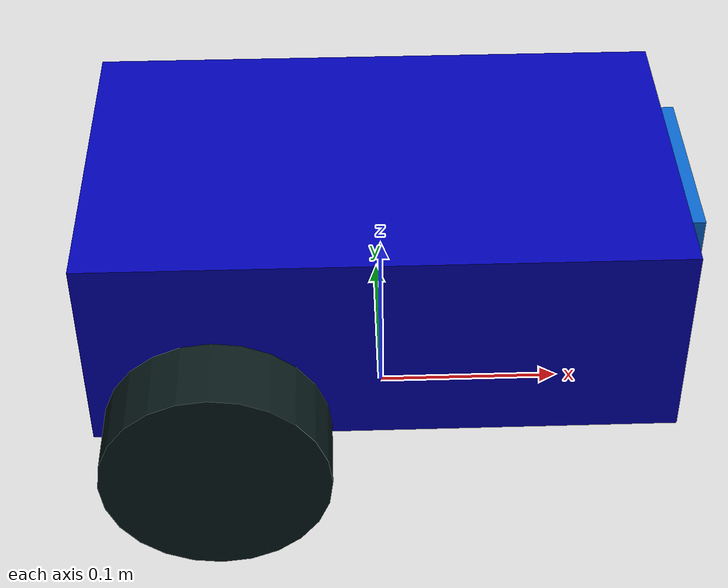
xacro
<?xml version="1.0"?>
<robot name="optimus" xmlns:xacro="http://www.ros.org/wiki/xacro">

    <!-- import URDF -->
    <xacro:include filename="common_properties.xacro" />
    <xacro:include filename="mobile_base.xacro" />
    <xacro:include filename="mobile_base_gazebo.xacro" /> <!-- Needs to be after main mobile base -->

    <xacro:include filename="camera.xacro" />

</robot>

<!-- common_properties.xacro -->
<robot xmlns:xacro="http://www.ros.org/wiki/xacro" >

    <!-- Colors -->
    <material name="blue">
        <color rgba="0 0 0.7 1" />
    </material>
    <material name="black">
        <color rgba="0.035 0.1 0.1 1" />
    </material>
    <material name="ugh">
        <color rgba="0.035 0.4 0.8 1" />
    </material>

    <!-- inertia macros -->
    <!-- https://en.wikipedia.org/wiki/List_of_moments_of_inertia#List_of_3D_inertia_tensors -->
    <!-- https://wiki.ros.org/urdf/Tutorials/Adding%20Physical%20and%20Collision%20Properties%20to%20a%20URDF%20Model -->
    <xacro:macro name="box_inertia" params="m l w h xyz rpy" >
        <inertial>
            <origin xyz="${xyz}" rpy="${rpy}" />
            <mass value="${m}" />
            <inertia ixx="${(m/12) * (h*h + l*l)}" ixy="0" ixz="0"
                     iyy="${(m/12) * (w*w + l*l)}" iyz="0"
                     izz='${(m/12) * (w*w + h*h)}' />
        </inertial>
    </xacro:macro>

    <xacro:macro name="cylinder_inertia" params="m r h xyz rpy" >
        <inertial>
            <origin xyz="${xyz}" rpy="${rpy}" />
            <mass value="${m}" />
            <inertia ixx="${(m/12) * ((3*r)**2 + h**2)}" ixy="0" ixz="0"
                     iyy="${(m/12) * ((3*r)**2 + h**2)}" iyz="0"
                     izz='${(m/12) * r**2}' />
        </inertial>
    </xacro:macro>

    <xacro:macro name="shpere_inertia" params="m r xyz rpy" >
        <inertial>
            <origin xyz="${xyz}" rpy="${rpy}" />
            <mass value="${m}" />
            <inertia ixx="${(m/5) * r**2}" ixy="0" ixz="0"
                     iyy="${(m/5) * r**2}" iyz="0"
                     izz='${(m/5) * r**2}' />
        </inertial>
    </xacro:macro>

</robot>

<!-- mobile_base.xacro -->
<robot xmlns:xacro="http://www.ros.org/wiki/xacro">

    <!-- Variables -->
    <xacro:property name="chassis_length" value="0.3" />
    <xacro:property name="chassis_width" value="0.18" />
    <xacro:property name="chassis_height" value="0.11" />
    <xacro:property name="rear_axel_position" value="${chassis_length / -3.5}" />
    <xacro:property name="wheel_length" value="0.04" />
    <xacro:property name="wheel_radius" value="0.058" />
    <xacro:property name="shpere_radius" value="0.03" />

    <!-- Macros or Functions -->
    <xacro:macro name="create_new_wheel" params="prefix is_left" >
        <link name="${prefix}_wheel_link">
            <visual>
                <geometry>
                    <cylinder radius="${wheel_radius}" length="${wheel_length}" />
                </geometry>
                <origin xyz="0 0 0" rpy="-${pi / 2} 0 0" />
                <material name="black" />
            </visual>

            <xacro:cylinder_inertia m="0.5" r="${wheel_radius}" h="${wheel_length}" xyz="0 0 0" rpy="-${pi / 2} 0 0" />

            <collision>
                <geometry>
                    <cylinder radius="${wheel_radius}" length="${wheel_length}" />
                </geometry>
                <origin xyz="0 0 0" rpy="-${pi / 2} 0 0" />
            </collision>
        </link>
        <joint name="base_${prefix}_wheel_joint" type="continuous">
            <parent link="chassis_link" />
            <child link="${prefix}_wheel_link"/>
            <origin xyz="${rear_axel_position} ${0.11 * is_left} 0" rpy="0 0 0" />
            <axis xyz="0 1 0" />
        </joint>
    </xacro:macro>

    <!-- Base -->
    <link name="base_link">
        <origin xyz="0 0 0" rpy="0 0 0" />
    </link>

    <!-- Chassis -->
    <link name="chassis_link">
        <visual>
            <geometry>
                <box size="${chassis_length} ${chassis_width} ${chassis_height}" />
            </geometry>
            <origin xyz="0 0 0.05" rpy="0 0 0" />
            <material name="blue" />
        </visual>

        <xacro:box_inertia m="1.5" l="${chassis_length}" w="${chassis_width}" h="${chassis_height}" xyz="0 0 0.05" rpy="0 0 0"/>

        <collision>
            <geometry>
                <box size="${chassis_length} ${chassis_width} ${chassis_height}" />
            </geometry>
            <origin xyz="0 0 0.059" rpy="0 0 0"/>
        </collision>
    </link>
    <joint name="foot_base_joint" type="fixed">
        <parent link="base_link" />
        <child link="chassis_link"/>
        <origin xyz="0 0 0.055" rpy="0 0 0" />
    </joint>

    <!-- - Caster - -->
    <link name="caster_wheel_link">
        <visual>
            <geometry>
                <sphere radius="${shpere_radius}" />
            </geometry>
            <origin xyz="0 0 0" rpy="0 0 0" />
            <material name="black" />
        </visual>

        <xacro:shpere_inertia m="0.15" r="${shpere_radius}" xyz="0 0 0.05" rpy="0 0 0"/>

        <collision>
            <geometry>
                <sphere radius="${shpere_radius}" />
            </geometry>
            <origin xyz="0 0 0" rpy="0 0 0" />
        </collision>
    </link>
    <joint name="base_caster_wheel_joint" type="fixed">
        <parent link="chassis_link" />
        <child link="caster_wheel_link"/>
        <origin xyz=".1 0 -.029" rpy="0 0 0" />
    </joint>

    <!-- Drive Wheels -->
    <xacro:create_new_wheel prefix="right" is_left="1" />
    <xacro:create_new_wheel prefix="left" is_left="-1" />

    <!-- Mesh -->

</robot>

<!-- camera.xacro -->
<robot xmlns:xacro="http://www.ros.org/wiki/xacro" >

    <xacro:property name="camera_length" value="0.01" />
    <xacro:property name="camera_width" value="0.1" />
    <xacro:property name="camera_height" value="0.05" />

    <link name="camera_link">
        <visual>
            <geometry>
                <box size="${camera_length} ${camera_width} ${camera_height}" />
            </geometry>
            <material name="ugh" />
        </visual>
        <collision>
            <geometry>
                <box size="${camera_length} ${camera_width} ${camera_height}" />
            </geometry>
        </collision>
        <xacro:box_inertia m="0.1" l="${camera_length}" w="${camera_width}" h="${camera_height}"
                            xyz="0 0 0" rpy="0 0 0" />
    </link>
    <joint name="chassis_camera_joint" type="fixed" >
        <parent link="chassis_link" />
        <child link="camera_link" />
        <origin xyz="0.155 0 0.07" rpy="0 0 0" />
    </joint>

    <gazebo reference="camera_link">
        <material>Gazebo/Grey</material>
        <sensor name="camera_sensor" type="camera">
            <pose>0 0 0 0 0 0</pose>
            <visualize>true</visualize> <!-- Allows us to see the sensor data -->
            <update_rate>10.0</update_rate> <!-- rate gazebo reads sensor data (hertz) -->
            <plugin name="camera_controller" filename="libgazebo_ros_camera.so">
                <frame_name>camera_link</frame_name>
            </plugin>
        </sensor>
    </gazebo>

</robot>
